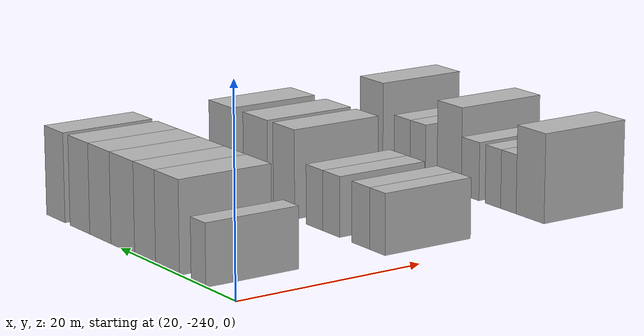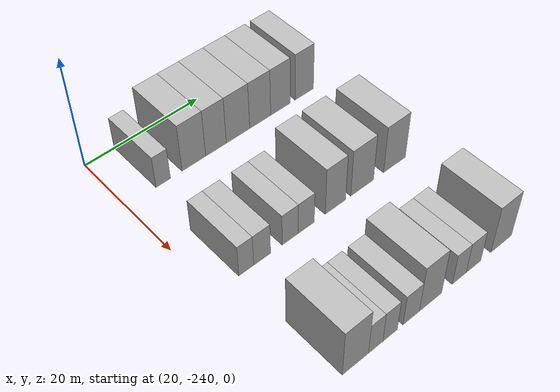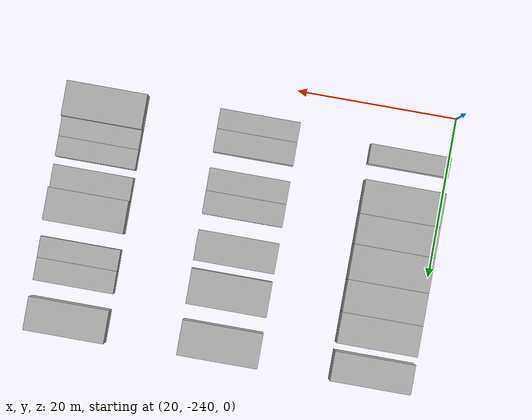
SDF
<sdf version="1.6">
 <world name="default">
  <model name="building_1">
   <static>1</static>
   <pose>25.0000 -233.7498 0 0.000000 0.000000 0.000000</pose>
   <link name="link">
    <pose>0 0 3.00 0 0 0</pose>
    <collision name="collision"><geometry><box><size>10.0000 2.5003 6.0000</size></box></geometry></collision>
    <visual name="visual">
     <cast_shadows>0</cast_shadows>
     <geometry><box><size>10.0000 2.5003 6.0000</size></box></geometry>
     <material>
      <script>
       <uri>model://HANNAS_wall/materials/scripts</uri>
       <uri>model://HANNAS_wall/materials/textures</uri>
       <name>vrc/HANNAS_wall</name>
      </script>
     </material>
    </visual>
   </link>
  </model>
  <model name="building_2">
   <static>1</static>
   <pose>25.0000 -228.3924 0 0.000000 0.000000 0.000000</pose>
   <link name="link">
    <pose>0 0 4.50 0 0 0</pose>
    <collision name="collision"><geometry><box><size>10.0000 4.2145 9.0000</size></box></geometry></collision>
    <visual name="visual">
     <cast_shadows>0</cast_shadows>
     <geometry><box><size>10.0000 4.2145 9.0000</size></box></geometry>
     <material>
      <script>
       <uri>model://HANNAS_wall/materials/scripts</uri>
       <uri>model://HANNAS_wall/materials/textures</uri>
       <name>vrc/HANNAS_wall</name>
      </script>
     </material>
    </visual>
   </link>
  </model>
  <model name="building_3">
   <static>1</static>
   <pose>25.0000 -224.3959 0 0.000000 0.000000 0.000000</pose>
   <link name="link">
    <pose>0 0 4.50 0 0 0</pose>
    <collision name="collision"><geometry><box><size>10.0000 3.7786 9.0000</size></box></geometry></collision>
    <visual name="visual">
     <cast_shadows>0</cast_shadows>
     <geometry><box><size>10.0000 3.7786 9.0000</size></box></geometry>
     <material>
      <script>
       <uri>model://HANNAS_wall/materials/scripts</uri>
       <uri>model://HANNAS_wall/materials/textures</uri>
       <name>vrc/HANNAS_wall</name>
      </script>
     </material>
    </visual>
   </link>
  </model>
  <model name="building_4">
   <static>1</static>
   <pose>25.0000 -220.3137 0 0.000000 0.000000 0.000000</pose>
   <link name="link">
    <pose>0 0 4.50 0 0 0</pose>
    <collision name="collision"><geometry><box><size>10.0000 4.3858 9.0000</size></box></geometry></collision>
    <visual name="visual">
     <cast_shadows>0</cast_shadows>
     <geometry><box><size>10.0000 4.3858 9.0000</size></box></geometry>
     <material>
      <script>
       <uri>model://HANNAS_wall/materials/scripts</uri>
       <uri>model://HANNAS_wall/materials/textures</uri>
       <name>vrc/HANNAS_wall</name>
      </script>
     </material>
    </visual>
   </link>
  </model>
  <model name="building_5">
   <static>1</static>
   <pose>25.0000 -216.0926 0 0.000000 0.000000 0.000000</pose>
   <link name="link">
    <pose>0 0 4.50 0 0 0</pose>
    <collision name="collision"><geometry><box><size>10.0000 4.0564 9.0000</size></box></geometry></collision>
    <visual name="visual">
     <cast_shadows>0</cast_shadows>
     <geometry><box><size>10.0000 4.0564 9.0000</size></box></geometry>
     <material>
      <script>
       <uri>model://HANNAS_wall/materials/scripts</uri>
       <uri>model://HANNAS_wall/materials/textures</uri>
       <name>vrc/HANNAS_wall</name>
      </script>
     </material>
    </visual>
   </link>
  </model>
  <model name="building_6">
   <static>1</static>
   <pose>25.0000 -212.1384 0 0.000000 0.000000 0.000000</pose>
   <link name="link">
    <pose>0 0 4.50 0 0 0</pose>
    <collision name="collision"><geometry><box><size>10.0000 3.8520 9.0000</size></box></geometry></collision>
    <visual name="visual">
     <cast_shadows>0</cast_shadows>
     <geometry><box><size>10.0000 3.8520 9.0000</size></box></geometry>
     <material>
      <script>
       <uri>model://HANNAS_wall/materials/scripts</uri>
       <uri>model://HANNAS_wall/materials/textures</uri>
       <name>vrc/HANNAS_wall</name>
      </script>
     </material>
    </visual>
   </link>
  </model>
  <model name="building_7">
   <static>1</static>
   <pose>25.0000 -207.3622 0 0.000000 0.000000 0.000000</pose>
   <link name="link">
    <pose>0 0 4.50 0 0 0</pose>
    <collision name="collision"><geometry><box><size>10.0000 3.7003 9.0000</size></box></geometry></collision>
    <visual name="visual">
     <cast_shadows>0</cast_shadows>
     <geometry><box><size>10.0000 3.7003 9.0000</size></box></geometry>
     <material>
      <script>
       <uri>model://HANNAS_wall/materials/scripts</uri>
       <uri>model://HANNAS_wall/materials/textures</uri>
       <name>vrc/HANNAS_wall</name>
      </script>
     </material>
    </visual>
   </link>
  </model>
  <model name="building_120">
   <static>1</static>
   <pose>44.0000 -234.7517 0 0.000000 0.000000 0.000000</pose>
   <link name="link">
    <pose>0 0 3.00 0 0 0</pose>
    <collision name="collision"><geometry><box><size>10.0000 2.4966 6.0000</size></box></geometry></collision>
    <visual name="visual">
     <cast_shadows>0</cast_shadows>
     <geometry><box><size>10.0000 2.4966 6.0000</size></box></geometry>
     <material>
      <script>
       <uri>model://HANNAS_wall/materials/scripts</uri>
       <uri>model://HANNAS_wall/materials/textures</uri>
       <name>vrc/HANNAS_wall</name>
      </script>
     </material>
    </visual>
   </link>
  </model>
  <model name="building_121">
   <static>1</static>
   <pose>44.0000 -232.0628 0 0.000000 0.000000 0.000000</pose>
   <link name="link">
    <pose>0 0 3.00 0 0 0</pose>
    <collision name="collision"><geometry><box><size>10.0000 2.8812 6.0000</size></box></geometry></collision>
    <visual name="visual">
     <cast_shadows>0</cast_shadows>
     <geometry><box><size>10.0000 2.8812 6.0000</size></box></geometry>
     <material>
      <script>
       <uri>model://HANNAS_wall/materials/scripts</uri>
       <uri>model://HANNAS_wall/materials/textures</uri>
       <name>vrc/HANNAS_wall</name>
      </script>
     </material>
    </visual>
   </link>
  </model>
  <model name="building_122">
   <static>1</static>
   <pose>44.0000 -227.2035 0 0.000000 0.000000 0.000000</pose>
   <link name="link">
    <pose>0 0 3.00 0 0 0</pose>
    <collision name="collision"><geometry><box><size>10.0000 2.8374 6.0000</size></box></geometry></collision>
    <visual name="visual">
     <cast_shadows>0</cast_shadows>
     <geometry><box><size>10.0000 2.8374 6.0000</size></box></geometry>
     <material>
      <script>
       <uri>model://HANNAS_wall/materials/scripts</uri>
       <uri>model://HANNAS_wall/materials/textures</uri>
       <name>vrc/HANNAS_wall</name>
      </script>
     </material>
    </visual>
   </link>
  </model>
  <model name="building_123">
   <static>1</static>
   <pose>44.0000 -224.3443 0 0.000000 0.000000 0.000000</pose>
   <link name="link">
    <pose>0 0 3.00 0 0 0</pose>
    <collision name="collision"><geometry><box><size>10.0000 2.8811 6.0000</size></box></geometry></collision>
    <visual name="visual">
     <cast_shadows>0</cast_shadows>
     <geometry><box><size>10.0000 2.8811 6.0000</size></box></geometry>
     <material>
      <script>
       <uri>model://HANNAS_wall/materials/scripts</uri>
       <uri>model://HANNAS_wall/materials/textures</uri>
       <name>vrc/HANNAS_wall</name>
      </script>
     </material>
    </visual>
   </link>
  </model>
  <model name="building_124">
   <static>1</static>
   <pose>44.0000 -219.0115 0 0.000000 0.000000 0.000000</pose>
   <link name="link">
    <pose>0 0 4.50 0 0 0</pose>
    <collision name="collision"><geometry><box><size>10.0000 3.7844 9.0000</size></box></geometry></collision>
    <visual name="visual">
     <cast_shadows>0</cast_shadows>
     <geometry><box><size>10.0000 3.7844 9.0000</size></box></geometry>
     <material>
      <script>
       <uri>model://HANNAS_wall/materials/scripts</uri>
       <uri>model://HANNAS_wall/materials/textures</uri>
       <name>vrc/HANNAS_wall</name>
      </script>
     </material>
    </visual>
   </link>
  </model>
  <model name="building_125">
   <static>1</static>
   <pose>44.0000 -213.9226 0 0.000000 0.000000 0.000000</pose>
   <link name="link">
    <pose>0 0 4.50 0 0 0</pose>
    <collision name="collision"><geometry><box><size>10.0000 4.3934 9.0000</size></box></geometry></collision>
    <visual name="visual">
     <cast_shadows>0</cast_shadows>
     <geometry><box><size>10.0000 4.3934 9.0000</size></box></geometry>
     <material>
      <script>
       <uri>model://HANNAS_wall/materials/scripts</uri>
       <uri>model://HANNAS_wall/materials/textures</uri>
       <name>vrc/HANNAS_wall</name>
      </script>
     </material>
    </visual>
   </link>
  </model>
  <model name="building_126">
   <static>1</static>
   <pose>44.0000 -207.5353 0 0.000000 0.000000 0.000000</pose>
   <link name="link">
    <pose>0 0 4.50 0 0 0</pose>
    <collision name="collision"><geometry><box><size>10.0000 4.3813 9.0000</size></box></geometry></collision>
    <visual name="visual">
     <cast_shadows>0</cast_shadows>
     <geometry><box><size>10.0000 4.3813 9.0000</size></box></geometry>
     <material>
      <script>
       <uri>model://HANNAS_wall/materials/scripts</uri>
       <uri>model://HANNAS_wall/materials/textures</uri>
       <name>vrc/HANNAS_wall</name>
      </script>
     </material>
    </visual>
   </link>
  </model>
  <model name="building_240">
   <static>1</static>
   <pose>63.0000 -233.8261 0 0.000000 0.000000 0.000000</pose>
   <link name="link">
    <pose>0 0 4.50 0 0 0</pose>
    <collision name="collision"><geometry><box><size>10.0000 4.3477 9.0000</size></box></geometry></collision>
    <visual name="visual">
     <cast_shadows>0</cast_shadows>
     <geometry><box><size>10.0000 4.3477 9.0000</size></box></geometry>
     <material>
      <script>
       <uri>model://HANNAS_wall/materials/scripts</uri>
       <uri>model://HANNAS_wall/materials/textures</uri>
       <name>vrc/HANNAS_wall</name>
      </script>
     </material>
    </visual>
   </link>
  </model>
  <model name="building_241">
   <static>1</static>
   <pose>63.0000 -230.4275 0 0.000000 0.000000 0.000000</pose>
   <link name="link">
    <pose>0 0 3.00 0 0 0</pose>
    <collision name="collision"><geometry><box><size>10.0000 2.4494 6.0000</size></box></geometry></collision>
    <visual name="visual">
     <cast_shadows>0</cast_shadows>
     <geometry><box><size>10.0000 2.4494 6.0000</size></box></geometry>
     <material>
      <script>
       <uri>model://HANNAS_wall/materials/scripts</uri>
       <uri>model://HANNAS_wall/materials/textures</uri>
       <name>vrc/HANNAS_wall</name>
      </script>
     </material>
    </visual>
   </link>
  </model>
  <model name="building_242">
   <static>1</static>
   <pose>63.0000 -227.9516 0 0.000000 0.000000 0.000000</pose>
   <link name="link">
    <pose>0 0 3.00 0 0 0</pose>
    <collision name="collision"><geometry><box><size>10.0000 2.5025 6.0000</size></box></geometry></collision>
    <visual name="visual">
     <cast_shadows>0</cast_shadows>
     <geometry><box><size>10.0000 2.5025 6.0000</size></box></geometry>
     <material>
      <script>
       <uri>model://HANNAS_wall/materials/scripts</uri>
       <uri>model://HANNAS_wall/materials/textures</uri>
       <name>vrc/HANNAS_wall</name>
      </script>
     </material>
    </visual>
   </link>
  </model>
  <model name="building_243">
   <static>1</static>
   <pose>63.0000 -224.2460 0 0.000000 0.000000 0.000000</pose>
   <link name="link">
    <pose>0 0 3.00 0 0 0</pose>
    <collision name="collision"><geometry><box><size>10.0000 2.9086 6.0000</size></box></geometry></collision>
    <visual name="visual">
     <cast_shadows>0</cast_shadows>
     <geometry><box><size>10.0000 2.9086 6.0000</size></box></geometry>
     <material>
      <script>
       <uri>model://HANNAS_wall/materials/scripts</uri>
       <uri>model://HANNAS_wall/materials/textures</uri>
       <name>vrc/HANNAS_wall</name>
      </script>
     </material>
    </visual>
   </link>
  </model>
  <model name="building_244">
   <static>1</static>
   <pose>63.0000 -220.7523 0 0.000000 0.000000 0.000000</pose>
   <link name="link">
    <pose>0 0 4.50 0 0 0</pose>
    <collision name="collision"><geometry><box><size>10.0000 4.0788 9.0000</size></box></geometry></collision>
    <visual name="visual">
     <cast_shadows>0</cast_shadows>
     <geometry><box><size>10.0000 4.0788 9.0000</size></box></geometry>
     <material>
      <script>
       <uri>model://HANNAS_wall/materials/scripts</uri>
       <uri>model://HANNAS_wall/materials/textures</uri>
       <name>vrc/HANNAS_wall</name>
      </script>
     </material>
    </visual>
   </link>
  </model>
  <model name="building_245">
   <static>1</static>
   <pose>63.0000 -215.3897 0 0.000000 0.000000 0.000000</pose>
   <link name="link">
    <pose>0 0 3.00 0 0 0</pose>
    <collision name="collision"><geometry><box><size>10.0000 2.6464 6.0000</size></box></geometry></collision>
    <visual name="visual">
     <cast_shadows>0</cast_shadows>
     <geometry><box><size>10.0000 2.6464 6.0000</size></box></geometry>
     <material>
      <script>
       <uri>model://HANNAS_wall/materials/scripts</uri>
       <uri>model://HANNAS_wall/materials/textures</uri>
       <name>vrc/HANNAS_wall</name>
      </script>
     </material>
    </visual>
   </link>
  </model>
  <model name="building_246">
   <static>1</static>
   <pose>63.0000 -212.6491 0 0.000000 0.000000 0.000000</pose>
   <link name="link">
    <pose>0 0 3.00 0 0 0</pose>
    <collision name="collision"><geometry><box><size>10.0000 2.8349 6.0000</size></box></geometry></collision>
    <visual name="visual">
     <cast_shadows>0</cast_shadows>
     <geometry><box><size>10.0000 2.8349 6.0000</size></box></geometry>
     <material>
      <script>
       <uri>model://HANNAS_wall/materials/scripts</uri>
       <uri>model://HANNAS_wall/materials/textures</uri>
       <name>vrc/HANNAS_wall</name>
      </script>
     </material>
    </visual>
   </link>
  </model>
  <model name="building_247">
   <static>1</static>
   <pose>63.0000 -207.1535 0 0.000000 0.000000 0.000000</pose>
   <link name="link">
    <pose>0 0 4.50 0 0 0</pose>
    <collision name="collision"><geometry><box><size>10.0000 4.1562 9.0000</size></box></geometry></collision>
    <visual name="visual">
     <cast_shadows>0</cast_shadows>
     <geometry><box><size>10.0000 4.1562 9.0000</size></box></geometry>
     <material>
      <script>
       <uri>model://HANNAS_wall/materials/scripts</uri>
       <uri>model://HANNAS_wall/materials/textures</uri>
       <name>vrc/HANNAS_wall</name>
      </script>
     </material>
    </visual>
   </link>
  </model>
 </world>
</sdf>
